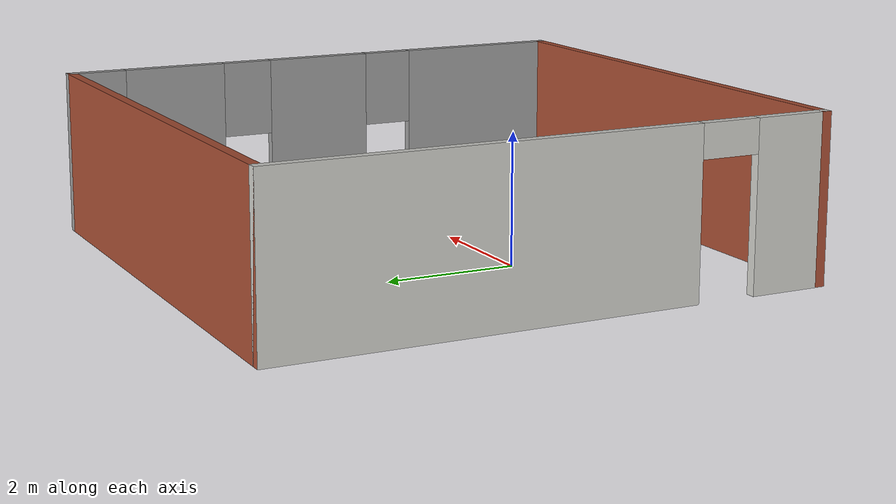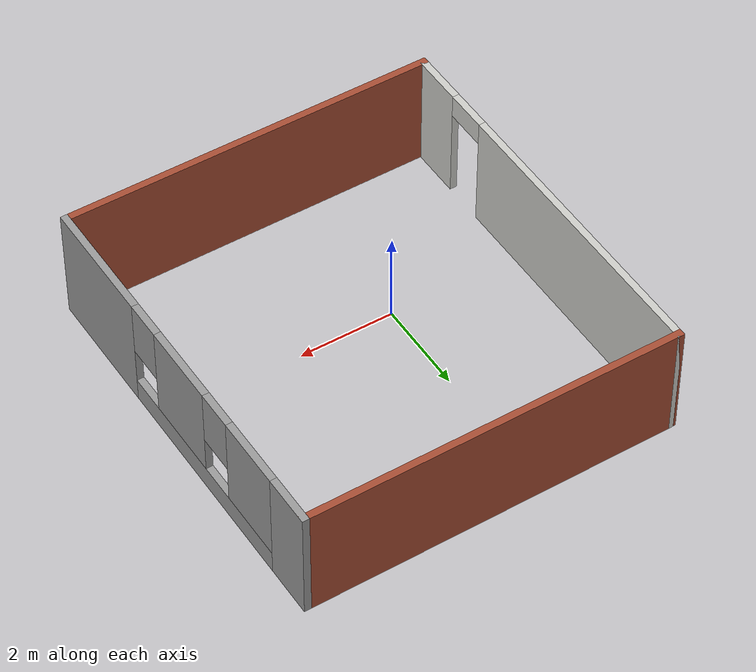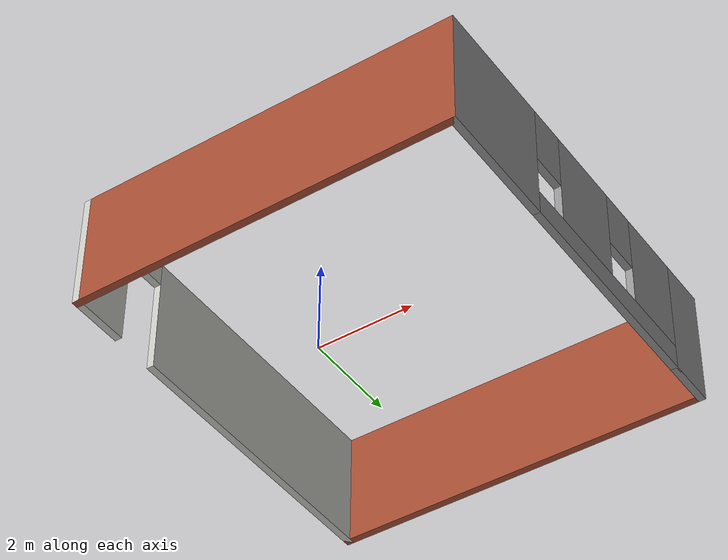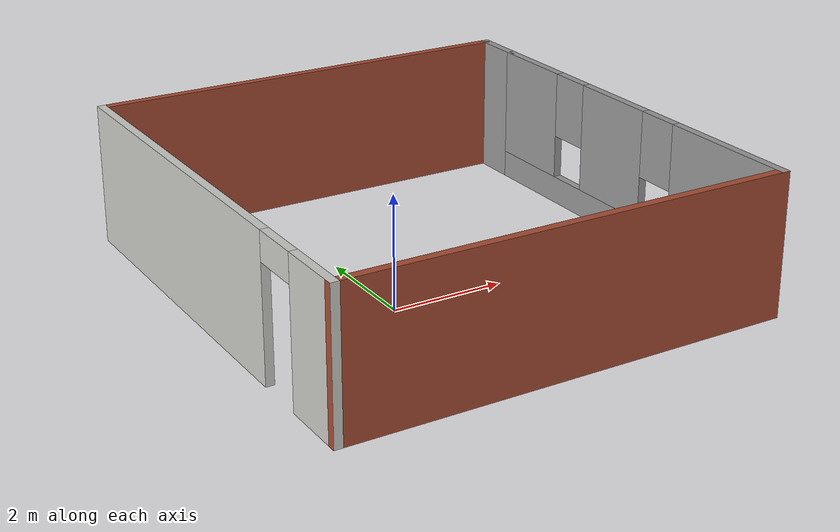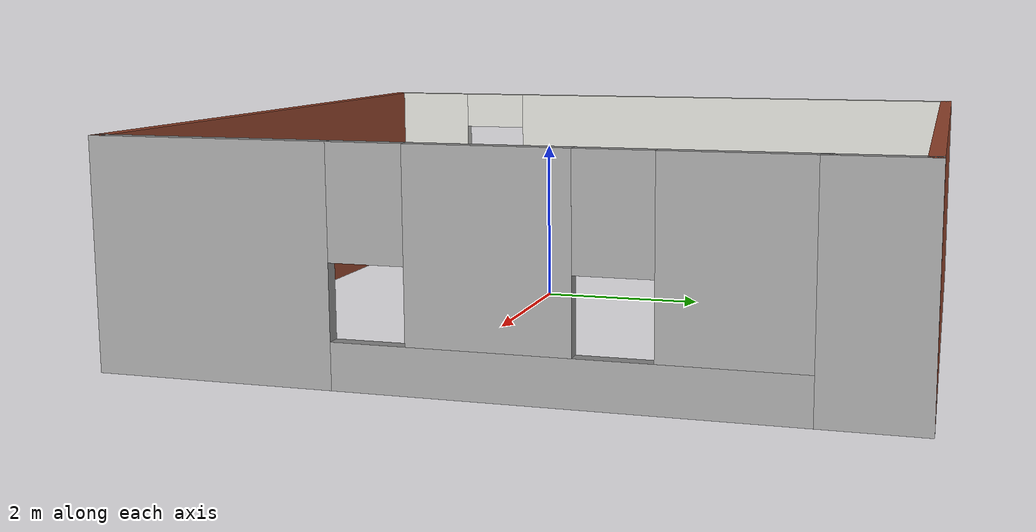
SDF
<?xml version='1.0'?>
<sdf version='1.7'>
  <model name='shiyanshihuanjing.world'>
    <pose>1.08638 0.86872 0 0 -0 0</pose>
    <link name='Wall_10'>
      <collision name='Wall_10_Collision'>
        <geometry>
          <box>
            <size>8 0.15 2.5</size>
          </box>
        </geometry>
        <pose>0 0 1.25 0 -0 0</pose>
      </collision>
      <visual name='Wall_10_Visual'>
        <pose>0 0 1.25 0 -0 0</pose>
        <geometry>
          <box>
            <size>8 0.15 2.5</size>
          </box>
        </geometry>
        <material>
          <script>
            <uri>file://media/materials/scripts/gazebo.material</uri>
            <name>Gazebo/Bricks</name>
          </script>
          <ambient>1 1 1 1</ambient>
        </material>
        <meta>
          <layer>0</layer>
        </meta>
      </visual>
      <pose>0 -4.175 0 0 -0 3.14159</pose>
    </link>
    <link name='Wall_11'>
      <pose>-3.925 -0 0 0 -0 1.5708</pose>
      <visual name='Wall_11_Visual_0'>
        <pose>-3.64584 0 1.25 0 -0 0</pose>
        <geometry>
          <box>
            <size>1.20832 0.15 2.5</size>
          </box>
        </geometry>
        <material>
          <script>
            <uri>file://media/materials/scripts/gazebo.material</uri>
            <name>Gazebo/CeilingTiled</name>
          </script>
          <ambient>1 1 1 1</ambient>
        </material>
        <meta>
          <layer>0</layer>
        </meta>
      </visual>
      <collision name='Wall_11_Collision_0'>
        <geometry>
          <box>
            <size>1.20832 0.15 2.5</size>
          </box>
        </geometry>
        <pose>-3.64584 0 1.25 0 -0 0</pose>
      </collision>
      <visual name='Wall_11_Visual_1'>
        <pose>1.05416 0 1.25 0 -0 0</pose>
        <geometry>
          <box>
            <size>6.39168 0.15 2.5</size>
          </box>
        </geometry>
        <material>
          <script>
            <uri>file://media/materials/scripts/gazebo.material</uri>
            <name>Gazebo/CeilingTiled</name>
          </script>
          <ambient>1 1 1 1</ambient>
        </material>
        <meta>
          <layer>0</layer>
        </meta>
      </visual>
      <collision name='Wall_11_Collision_1'>
        <geometry>
          <box>
            <size>6.39168 0.15 2.5</size>
          </box>
        </geometry>
        <pose>1.05416 0 1.25 0 -0 0</pose>
      </collision>
      <visual name='Wall_11_Visual_2'>
        <pose>-2.59168 0 2.25 0 -0 0</pose>
        <geometry>
          <box>
            <size>0.9 0.15 0.5</size>
          </box>
        </geometry>
        <material>
          <script>
            <uri>file://media/materials/scripts/gazebo.material</uri>
            <name>Gazebo/CeilingTiled</name>
          </script>
          <ambient>1 1 1 1</ambient>
        </material>
        <meta>
          <layer>0</layer>
        </meta>
      </visual>
      <collision name='Wall_11_Collision_2'>
        <geometry>
          <box>
            <size>0.9 0.15 0.5</size>
          </box>
        </geometry>
        <pose>-2.59168 0 2.25 0 -0 0</pose>
      </collision>
    </link>
    <link name='Wall_12'>
      <collision name='Wall_12_Collision'>
        <geometry>
          <box>
            <size>8 0.15 2.5</size>
          </box>
        </geometry>
        <pose>0 0 1.25 0 -0 0</pose>
      </collision>
      <visual name='Wall_12_Visual'>
        <pose>0 0 1.25 0 -0 0</pose>
        <geometry>
          <box>
            <size>8 0.15 2.5</size>
          </box>
        </geometry>
        <material>
          <script>
            <uri>file://media/materials/scripts/gazebo.material</uri>
            <name>Gazebo/Bricks</name>
          </script>
          <ambient>1 1 1 1</ambient>
        </material>
        <meta>
          <layer>0</layer>
        </meta>
      </visual>
      <pose>0 4.175 0 0 -0 0</pose>
    </link>
    <link name='Wall_13'>
      <collision name='Wall_13_Collision'>
        <geometry>
          <box>
            <size>1.07065 0.15 2.5</size>
          </box>
        </geometry>
        <pose>0 0 1.25 0 -0 0</pose>
      </collision>
      <visual name='Wall_13_Visual'>
        <pose>0 0 1.25 0 -0 0</pose>
        <geometry>
          <box>
            <size>1.07065 0.15 2.5</size>
          </box>
        </geometry>
        <material>
          <script>
            <uri>file://media/materials/scripts/gazebo.material</uri>
            <name>Gazebo/Grey</name>
          </script>
          <ambient>1 1 1 1</ambient>
        </material>
        <meta>
          <layer>0</layer>
        </meta>
      </visual>
      <pose>3.925 3.71468 0 0 -0 -1.5708</pose>
    </link>
    <link name='Wall_5'>
      <pose>3.925 -0.460325 0 0 -0 1.5708</pose>
      <visual name='Wall_5_Visual_0'>
        <pose>-2.4662 0 1.25 0 -0 0</pose>
        <geometry>
          <box>
            <size>2.64695 0.15 2.5</size>
          </box>
        </geometry>
        <material>
          <script>
            <uri>file://media/materials/scripts/gazebo.material</uri>
            <name>Gazebo/Grey</name>
          </script>
          <ambient>1 1 1 1</ambient>
        </material>
        <meta>
          <layer>0</layer>
        </meta>
      </visual>
      <collision name='Wall_5_Collision_0'>
        <geometry>
          <box>
            <size>2.64695 0.15 2.5</size>
          </box>
        </geometry>
        <pose>-2.4662 0 1.25 0 -0 0</pose>
      </collision>
      <visual name='Wall_5_Visual_1'>
        <pose>1.32347 0 0.25 0 -0 0</pose>
        <geometry>
          <box>
            <size>4.9324 0.15 0.5</size>
          </box>
        </geometry>
        <material>
          <script>
            <uri>file://media/materials/scripts/gazebo.material</uri>
            <name>Gazebo/Grey</name>
          </script>
          <ambient>1 1 1 1</ambient>
        </material>
        <meta>
          <layer>0</layer>
        </meta>
      </visual>
      <collision name='Wall_5_Collision_1'>
        <geometry>
          <box>
            <size>4.9324 0.15 0.5</size>
          </box>
        </geometry>
        <pose>1.32347 0 0.25 0 -0 0</pose>
      </collision>
      <visual name='Wall_5_Visual_2'>
        <pose>0.507035 0 1.5 0 -0 0</pose>
        <geometry>
          <box>
            <size>1.69952 0.15 2</size>
          </box>
        </geometry>
        <material>
          <script>
            <uri>file://media/materials/scripts/gazebo.material</uri>
            <name>Gazebo/Grey</name>
          </script>
          <ambient>1 1 1 1</ambient>
        </material>
        <meta>
          <layer>0</layer>
        </meta>
      </visual>
      <collision name='Wall_5_Collision_2'>
        <geometry>
          <box>
            <size>1.69952 0.15 2</size>
          </box>
        </geometry>
        <pose>0.507035 0 1.5 0 -0 0</pose>
      </collision>
      <visual name='Wall_5_Visual_3'>
        <pose>2.97324 0 1.5 0 -0 0</pose>
        <geometry>
          <box>
            <size>1.63288 0.15 2</size>
          </box>
        </geometry>
        <material>
          <script>
            <uri>file://media/materials/scripts/gazebo.material</uri>
            <name>Gazebo/Grey</name>
          </script>
          <ambient>1 1 1 1</ambient>
        </material>
        <meta>
          <layer>0</layer>
        </meta>
      </visual>
      <collision name='Wall_5_Collision_3'>
        <geometry>
          <box>
            <size>1.63288 0.15 2</size>
          </box>
        </geometry>
        <pose>2.97324 0 1.5 0 -0 0</pose>
      </collision>
      <visual name='Wall_5_Visual_4'>
        <pose>-0.742728 0 1.9 0 -0 0</pose>
        <geometry>
          <box>
            <size>0.8 0.15 1.2</size>
          </box>
        </geometry>
        <material>
          <script>
            <uri>file://media/materials/scripts/gazebo.material</uri>
            <name>Gazebo/Grey</name>
          </script>
          <ambient>1 1 1 1</ambient>
        </material>
        <meta>
          <layer>0</layer>
        </meta>
      </visual>
      <collision name='Wall_5_Collision_4'>
        <geometry>
          <box>
            <size>0.8 0.15 1.2</size>
          </box>
        </geometry>
        <pose>-0.742728 0 1.9 0 -0 0</pose>
      </collision>
      <visual name='Wall_5_Visual_5'>
        <pose>1.7568 0 1.9 0 -0 0</pose>
        <geometry>
          <box>
            <size>0.8 0.15 1.2</size>
          </box>
        </geometry>
        <material>
          <script>
            <uri>file://media/materials/scripts/gazebo.material</uri>
            <name>Gazebo/Grey</name>
          </script>
          <ambient>1 1 1 1</ambient>
        </material>
        <meta>
          <layer>0</layer>
        </meta>
      </visual>
      <collision name='Wall_5_Collision_5'>
        <geometry>
          <box>
            <size>0.8 0.15 1.2</size>
          </box>
        </geometry>
        <pose>1.7568 0 1.9 0 -0 0</pose>
      </collision>
    </link>
    <static>1</static>
  </model>
</sdf>
